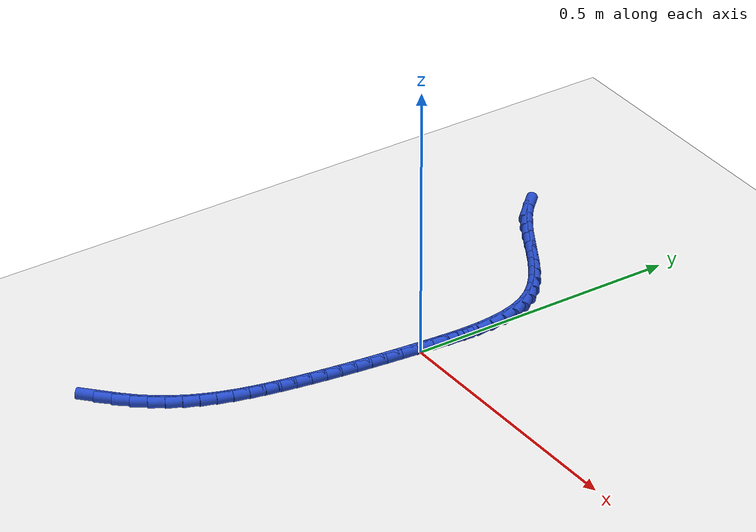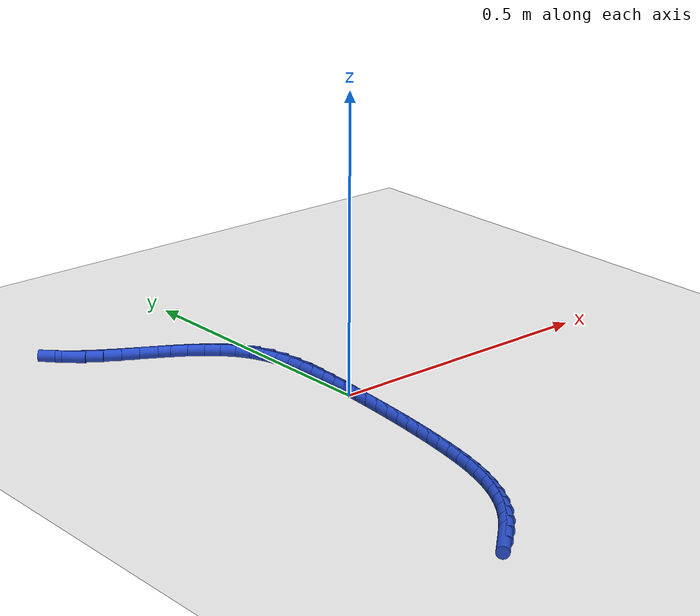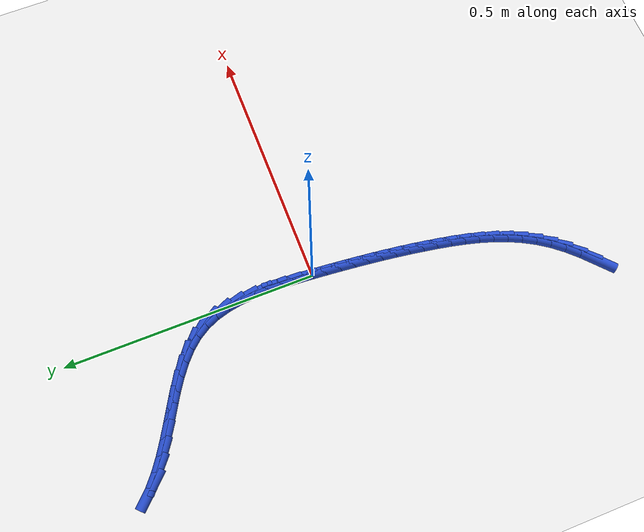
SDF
<sdf version="1.6">
 <world name="default">
  <model name="ground_plane">
   <static>1</static>
   <link name="link">
    <collision name="collision">
     <geometry><plane><normal>0 0 1</normal><size>100 100</size></plane></geometry>
     <surface><friction><ode><mu>100</mu><mu2>50</mu2></ode></friction></surface>
    </collision>
    <visual name="visual">
     <cast_shadows>0</cast_shadows>
     <geometry><plane><normal>0 0 1</normal><size>100 100</size></plane></geometry>
     <material>
      <script><uri>file://media/materials/scripts/gazebo.material</uri><name>Gazebo/WhiteGlow</name></script>
     </material>
    </visual>
   </link>
  </model>
  <model name="line">
   <link name="link_0">
    <pose>6.938893903907228e-18 1.3877787807814457e-17 0.01 0 1.57 1.4926502074860097</pose>
    <collision name="collision">
     <geometry><cylinder><radius>0.01</radius><length>0.08</length></cylinder></geometry>
    </collision>
    <visual name="visual">
     <material>
      <script><name>Gazebo/Blue</name><uri>file://media/materials/scripts/gazebo.material</uri></script>
     </material>
     <geometry><cylinder><radius>0.01</radius><length>0.08</length></cylinder></geometry>
    </visual>
   </link>
   <link name="link_1">
    <pose>0.0023202932928651165 0.02963126240863364 0.01 0 1.57 1.5112525195098752</pose>
    <collision name="collision">
     <geometry><cylinder><radius>0.01</radius><length>0.08</length></cylinder></geometry>
    </collision>
    <visual name="visual">
     <material>
      <script><name>Gazebo/Blue</name><uri>file://media/materials/scripts/gazebo.material</uri></script>
     </material>
     <geometry><cylinder><radius>0.01</radius><length>0.08</length></cylinder></geometry>
    </visual>
   </link>
   <link name="link_2">
    <pose>0.004103257225446785 0.059539599986659454 0.01 0 1.57 1.5436425515877783</pose>
    <collision name="collision">
     <geometry><cylinder><radius>0.01</radius><length>0.08</length></cylinder></geometry>
    </collision>
    <visual name="visual">
     <material>
      <script><name>Gazebo/Blue</name><uri>file://media/materials/scripts/gazebo.material</uri></script>
     </material>
     <geometry><cylinder><radius>0.01</radius><length>0.08</length></cylinder></geometry>
    </visual>
   </link>
   <link name="link_3">
    <pose>0.004913730629263788 0.08937980427007985 0.01 0 1.57 -1.5505054672399763</pose>
    <collision name="collision">
     <geometry><cylinder><radius>0.01</radius><length>0.08</length></cylinder></geometry>
    </collision>
    <visual name="visual">
     <material>
      <script><name>Gazebo/Blue</name><uri>file://media/materials/scripts/gazebo.material</uri></script>
     </material>
     <geometry><cylinder><radius>0.01</radius><length>0.08</length></cylinder></geometry>
    </visual>
   </link>
   <link name="link_4">
    <pose>0.004316552335834899 0.11880666679489729 0.01 0 1.57 -1.4858898653459824</pose>
    <collision name="collision">
     <geometry><cylinder><radius>0.01</radius><length>0.08</length></cylinder></geometry>
    </collision>
    <visual name="visual">
     <material>
      <script><name>Gazebo/Blue</name><uri>file://media/materials/scripts/gazebo.material</uri></script>
     </material>
     <geometry><cylinder><radius>0.01</radius><length>0.08</length></cylinder></geometry>
    </visual>
   </link>
   <link name="link_5">
    <pose>0.001876561176678896 0.1474749790971142 0.01 0 1.57 -1.4012783976738419</pose>
    <collision name="collision">
     <geometry><cylinder><radius>0.01</radius><length>0.08</length></cylinder></geometry>
    </collision>
    <visual name="visual">
     <material>
      <script><name>Gazebo/Blue</name><uri>file://media/materials/scripts/gazebo.material</uri></script>
     </material>
     <geometry><cylinder><radius>0.01</radius><length>0.08</length></cylinder></geometry>
    </visual>
   </link>
   <link name="link_6">
    <pose>-0.0028414040166854504 0.17503953271273295 0.01 0 1.57 -1.2935765922307763</pose>
    <collision name="collision">
     <geometry><cylinder><radius>0.01</radius><length>0.08</length></cylinder></geometry>
    </collision>
    <visual name="visual">
     <material>
      <script><name>Gazebo/Blue</name><uri>file://media/materials/scripts/gazebo.material</uri></script>
     </material>
     <geometry><cylinder><radius>0.01</radius><length>0.08</length></cylinder></geometry>
    </visual>
   </link>
   <link name="link_7">
    <pose>-0.010272504412739364 0.20115511917775597 0.01 0 1.57 -1.160500586632022</pose>
    <collision name="collision">
     <geometry><cylinder><radius>0.01</radius><length>0.08</length></cylinder></geometry>
    </collision>
    <visual name="visual">
     <material>
      <script><name>Gazebo/Blue</name><uri>file://media/materials/scripts/gazebo.material</uri></script>
     </material>
     <geometry><cylinder><radius>0.01</radius><length>0.08</length></cylinder></geometry>
    </visual>
   </link>
   <link name="link_8">
    <pose>-0.020851901179964064 0.22547653002818574 0.01 0 1.57 -1.0030397510339848</pose>
    <collision name="collision">
     <geometry><cylinder><radius>0.01</radius><length>0.08</length></cylinder></geometry>
    </collision>
    <visual name="visual">
     <material>
      <script><name>Gazebo/Blue</name><uri>file://media/materials/scripts/gazebo.material</uri></script>
     </material>
     <geometry><cylinder><radius>0.01</radius><length>0.08</length></cylinder></geometry>
    </visual>
   </link>
   <link name="link_9">
    <pose>-0.03500438931396423 0.24766579175591782 0.01 0 1.57 -0.8463104783337656</pose>
    <collision name="collision">
     <geometry><cylinder><radius>0.01</radius><length>0.08</length></cylinder></geometry>
    </collision>
    <visual name="visual">
     <material>
      <script><name>Gazebo/Blue</name><uri>file://media/materials/scripts/gazebo.material</uri></script>
     </material>
     <geometry><cylinder><radius>0.01</radius><length>0.08</length></cylinder></geometry>
    </visual>
   </link>
   <link name="link_10">
    <pose>-0.05272314583087124 0.2676861738555821 0.01 0 1.57 -0.721702423346588</pose>
    <collision name="collision">
     <geometry><cylinder><radius>0.01</radius><length>0.08</length></cylinder></geometry>
    </collision>
    <visual name="visual">
     <material>
      <script><name>Gazebo/Blue</name><uri>file://media/materials/scripts/gazebo.material</uri></script>
     </material>
     <geometry><cylinder><radius>0.01</radius><length>0.08</length></cylinder></geometry>
    </visual>
   </link>
   <link name="link_11">
    <pose>-0.07342350970037664 0.2859042415056813 0.01 0 1.57 -0.6299822140444941</pose>
    <collision name="collision">
     <geometry><cylinder><radius>0.01</radius><length>0.08</length></cylinder></geometry>
    </collision>
    <visual name="visual">
     <material>
      <script><name>Gazebo/Blue</name><uri>file://media/materials/scripts/gazebo.material</uri></script>
     </material>
     <geometry><cylinder><radius>0.01</radius><length>0.08</length></cylinder></geometry>
    </visual>
   </link>
   <link name="link_12">
    <pose>-0.09648042715843243 0.30271475154720484 0.01 0 1.57 -0.5673968668931678</pose>
    <collision name="collision">
     <geometry><cylinder><radius>0.01</radius><length>0.08</length></cylinder></geometry>
    </collision>
    <visual name="visual">
     <material>
      <script><name>Gazebo/Blue</name><uri>file://media/materials/scripts/gazebo.material</uri></script>
     </material>
     <geometry><cylinder><radius>0.01</radius><length>0.08</length></cylinder></geometry>
    </visual>
   </link>
   <link name="link_13">
    <pose>-0.12126884444099065 0.31851246082114204 0.01 0 1.57 -0.5302134122754102</pose>
    <collision name="collision">
     <geometry><cylinder><radius>0.01</radius><length>0.08</length></cylinder></geometry>
    </collision>
    <visual name="visual">
     <material>
      <script><name>Gazebo/Blue</name><uri>file://media/materials/scripts/gazebo.material</uri></script>
     </material>
     <geometry><cylinder><radius>0.01</radius><length>0.08</length></cylinder></geometry>
    </visual>
   </link>
   <link name="link_14">
    <pose>-0.14716370778400326 0.33369212616848204 0.01 0 1.57 -0.5158311585512316</pose>
    <collision name="collision">
     <geometry><cylinder><radius>0.01</radius><length>0.08</length></cylinder></geometry>
    </collision>
    <visual name="visual">
     <material>
      <script><name>Gazebo/Blue</name><uri>file://media/materials/scripts/gazebo.material</uri></script>
     </material>
     <geometry><cylinder><radius>0.01</radius><length>0.08</length></cylinder></geometry>
    </visual>
   </link>
   <link name="link_15">
    <pose>-0.17353996342342232 0.34864850443021417 0.01 0 1.57 -0.5230969465022173</pose>
    <collision name="collision">
     <geometry><cylinder><radius>0.01</radius><length>0.08</length></cylinder></geometry>
    </collision>
    <visual name="visual">
     <material>
      <script><name>Gazebo/Blue</name><uri>file://media/materials/scripts/gazebo.material</uri></script>
     </material>
     <geometry><cylinder><radius>0.01</radius><length>0.08</length></cylinder></geometry>
    </visual>
   </link>
   <link name="link_16">
    <pose>-0.1997725575951998 0.3637763524473276 0.01 0 1.57 -0.5523381844660998</pose>
    <collision name="collision">
     <geometry><cylinder><radius>0.01</radius><length>0.08</length></cylinder></geometry>
    </collision>
    <visual name="visual">
     <material>
      <script><name>Gazebo/Blue</name><uri>file://media/materials/scripts/gazebo.material</uri></script>
     </material>
     <geometry><cylinder><radius>0.01</radius><length>0.08</length></cylinder></geometry>
    </visual>
   </link>
   <link name="link_17">
    <pose>-0.22523643653528777 0.3794704270608117 0.01 0 1.57 -0.6052956724535428</pose>
    <collision name="collision">
     <geometry><cylinder><radius>0.01</radius><length>0.08</length></cylinder></geometry>
    </collision>
    <visual name="visual">
     <material>
      <script><name>Gazebo/Blue</name><uri>file://media/materials/scripts/gazebo.material</uri></script>
     </material>
     <geometry><cylinder><radius>0.01</radius><length>0.08</length></cylinder></geometry>
    </visual>
   </link>
   <link name="link_18">
    <pose>-0.24930654647963815 0.39612548511165563 0.01 0 1.57 -0.6848823754854073</pose>
    <collision name="collision">
     <geometry><cylinder><radius>0.01</radius><length>0.08</length></cylinder></geometry>
    </collision>
    <visual name="visual">
     <material>
      <script><name>Gazebo/Blue</name><uri>file://media/materials/scripts/gazebo.material</uri></script>
     </material>
     <geometry><cylinder><radius>0.01</radius><length>0.08</length></cylinder></geometry>
    </visual>
   </link>
   <link name="link_19">
    <pose>-0.2713578336642029 0.41413628344084863 0.01 0 1.57 -0.7944328034026182</pose>
    <collision name="collision">
     <geometry><cylinder><radius>0.01</radius><length>0.08</length></cylinder></geometry>
    </collision>
    <visual name="visual">
     <material>
      <script><name>Gazebo/Blue</name><uri>file://media/materials/scripts/gazebo.material</uri></script>
     </material>
     <geometry><cylinder><radius>0.01</radius><length>0.08</length></cylinder></geometry>
    </visual>
   </link>
   <link name="link_240">
    <pose>-0.1742656257620032 -0.5258924639352074 0.01 0 1.57 0.7380999890037518</pose>
    <collision name="collision">
     <geometry><cylinder><radius>0.01</radius><length>0.08</length></cylinder></geometry>
    </collision>
    <visual name="visual">
     <material>
      <script><name>Gazebo/Blue</name><uri>file://media/materials/scripts/gazebo.material</uri></script>
     </material>
     <geometry><cylinder><radius>0.01</radius><length>0.08</length></cylinder></geometry>
    </visual>
   </link>
   <link name="link_241">
    <pose>-0.15090323922967738 -0.5046417696171482 0.01 0 1.57 0.8019164358080776</pose>
    <collision name="collision">
     <geometry><cylinder><radius>0.01</radius><length>0.08</length></cylinder></geometry>
    </collision>
    <visual name="visual">
     <material>
      <script><name>Gazebo/Blue</name><uri>file://media/materials/scripts/gazebo.material</uri></script>
     </material>
     <geometry><cylinder><radius>0.01</radius><length>0.08</length></cylinder></geometry>
    </visual>
   </link>
   <link name="link_242">
    <pose>-0.1295294426264781 -0.48254993049457895 0.01 0 1.57 0.8816866393308905</pose>
    <collision name="collision">
     <geometry><cylinder><radius>0.01</radius><length>0.08</length></cylinder></geometry>
    </collision>
    <visual name="visual">
     <material>
      <script><name>Gazebo/Blue</name><uri>file://media/materials/scripts/gazebo.material</uri></script>
     </material>
     <geometry><cylinder><radius>0.01</radius><length>0.08</length></cylinder></geometry>
    </visual>
   </link>
   <link name="link_243">
    <pose>-0.11053631753135669 -0.4594955568115831 0.01 0 1.57 0.9721000746445524</pose>
    <collision name="collision">
     <geometry><cylinder><radius>0.01</radius><length>0.08</length></cylinder></geometry>
    </collision>
    <visual name="visual">
     <material>
      <script><name>Gazebo/Blue</name><uri>file://media/materials/scripts/gazebo.material</uri></script>
     </material>
     <geometry><cylinder><radius>0.01</radius><length>0.08</length></cylinder></geometry>
    </visual>
   </link>
   <link name="link_244">
    <pose>-0.09412149451333487 -0.43543482357678104 0.01 0 1.57 1.0580310600491816</pose>
    <collision name="collision">
     <geometry><cylinder><radius>0.01</radius><length>0.08</length></cylinder></geometry>
    </collision>
    <visual name="visual">
     <material>
      <script><name>Gazebo/Blue</name><uri>file://media/materials/scripts/gazebo.material</uri></script>
     </material>
     <geometry><cylinder><radius>0.01</radius><length>0.08</length></cylinder></geometry>
    </visual>
   </link>
   <link name="link_245">
    <pose>-0.08007558390818079 -0.41048626252075443 0.01 0 1.57 1.135915903918502</pose>
    <collision name="collision">
     <geometry><cylinder><radius>0.01</radius><length>0.08</length></cylinder></geometry>
    </collision>
    <visual name="visual">
     <material>
      <script><name>Gazebo/Blue</name><uri>file://media/materials/scripts/gazebo.material</uri></script>
     </material>
     <geometry><cylinder><radius>0.01</radius><length>0.08</length></cylinder></geometry>
    </visual>
   </link>
   <link name="link_246">
    <pose>-0.06813805471387073 -0.38478880519523173 0.01 0 1.57 1.2045685771601105</pose>
    <collision name="collision">
     <geometry><cylinder><radius>0.01</radius><length>0.08</length></cylinder></geometry>
    </collision>
    <visual name="visual">
     <material>
      <script><name>Gazebo/Blue</name><uri>file://media/materials/scripts/gazebo.material</uri></script>
     </material>
     <geometry><cylinder><radius>0.01</radius><length>0.08</length></cylinder></geometry>
    </visual>
   </link>
   <link name="link_247">
    <pose>-0.05804837592837976 -0.3584813831519397 0.01 0 1.57 1.2633560250117035</pose>
    <collision name="collision">
     <geometry><cylinder><radius>0.01</radius><length>0.08</length></cylinder></geometry>
    </collision>
    <visual name="visual">
     <material>
      <script><name>Gazebo/Blue</name><uri>file://media/materials/scripts/gazebo.material</uri></script>
     </material>
     <geometry><cylinder><radius>0.01</radius><length>0.08</length></cylinder></geometry>
    </visual>
   </link>
   <link name="link_248">
    <pose>-0.04954601654968339 -0.3317029279426056 0.01 0 1.57 1.3120513876704396</pose>
    <collision name="collision">
     <geometry><cylinder><radius>0.01</radius><length>0.08</length></cylinder></geometry>
    </collision>
    <visual name="visual">
     <material>
      <script><name>Gazebo/Blue</name><uri>file://media/materials/scripts/gazebo.material</uri></script>
     </material>
     <geometry><cylinder><radius>0.01</radius><length>0.08</length></cylinder></geometry>
    </visual>
   </link>
   <link name="link_249">
    <pose>-0.042370445575757115 -0.30459237111895676 0.01 0 1.57 1.3506683193346112</pose>
    <collision name="collision">
     <geometry><cylinder><radius>0.01</radius><length>0.08</length></cylinder></geometry>
    </collision>
    <visual name="visual">
     <material>
      <script><name>Gazebo/Blue</name><uri>file://media/materials/scripts/gazebo.material</uri></script>
     </material>
     <geometry><cylinder><radius>0.01</radius><length>0.08</length></cylinder></geometry>
    </visual>
   </link>
   <link name="link_250">
    <pose>-0.03626113200457644 -0.2772886442327204 0.01 0 1.57 1.3793125100316574</pose>
    <collision name="collision">
     <geometry><cylinder><radius>0.01</radius><length>0.08</length></cylinder></geometry>
    </collision>
    <visual name="visual">
     <material>
      <script><name>Gazebo/Blue</name><uri>file://media/materials/scripts/gazebo.material</uri></script>
     </material>
     <geometry><cylinder><radius>0.01</radius><length>0.08</length></cylinder></geometry>
    </visual>
   </link>
   <link name="link_251">
    <pose>-0.030957544834116855 -0.24993067883562406 0.01 0 1.57 1.3984171594909376</pose>
    <collision name="collision">
     <geometry><cylinder><radius>0.01</radius><length>0.08</length></cylinder></geometry>
    </collision>
    <visual name="visual">
     <material>
      <script><name>Gazebo/Blue</name><uri>file://media/materials/scripts/gazebo.material</uri></script>
     </material>
     <geometry><cylinder><radius>0.01</radius><length>0.08</length></cylinder></geometry>
    </visual>
   </link>
   <link name="link_252">
    <pose>-0.026207566769882857 -0.22264874674795354 0.01 0 1.57 1.4129942618288822</pose>
    <collision name="collision">
     <geometry><cylinder><radius>0.01</radius><length>0.08</length></cylinder></geometry>
    </collision>
    <visual name="visual">
     <material>
      <script><name>Gazebo/Blue</name><uri>file://media/materials/scripts/gazebo.material</uri></script>
     </material>
     <geometry><cylinder><radius>0.01</radius><length>0.08</length></cylinder></geometry>
    </visual>
   </link>
   <link name="link_253">
    <pose>-0.021879442767513045 -0.1954492380460567 0.01 0 1.57 1.4266684306133826</pose>
    <collision name="collision">
     <geometry><cylinder><radius>0.01</radius><length>0.08</length></cylinder></geometry>
    </collision>
    <visual name="visual">
     <material>
      <script><name>Gazebo/Blue</name><uri>file://media/materials/scripts/gazebo.material</uri></script>
     </material>
     <geometry><cylinder><radius>0.01</radius><length>0.08</length></cylinder></geometry>
    </visual>
   </link>
   <link name="link_254">
    <pose>-0.01793132275087613 -0.16824600894087685 0.01 0 1.57 1.4393813205305752</pose>
    <collision name="collision">
     <geometry><cylinder><radius>0.01</radius><length>0.08</length></cylinder></geometry>
    </collision>
    <visual name="visual">
     <material>
      <script><name>Gazebo/Blue</name><uri>file://media/materials/scripts/gazebo.material</uri></script>
     </material>
     <geometry><cylinder><radius>0.01</radius><length>0.08</length></cylinder></geometry>
    </visual>
   </link>
   <link name="link_255">
    <pose>-0.014323515892267727 -0.1409506932566844 0.01 0 1.57 1.4510053138489802</pose>
    <collision name="collision">
     <geometry><cylinder><radius>0.01</radius><length>0.08</length></cylinder></geometry>
    </collision>
    <visual name="visual">
     <material>
      <script><name>Gazebo/Blue</name><uri>file://media/materials/scripts/gazebo.material</uri></script>
     </material>
     <geometry><cylinder><radius>0.01</radius><length>0.08</length></cylinder></geometry>
    </visual>
   </link>
   <link name="link_256">
    <pose>-0.011016331363983453 -0.11347492481774987 0.01 0 1.57 1.461438069617311</pose>
    <collision name="collision">
     <geometry><cylinder><radius>0.01</radius><length>0.08</length></cylinder></geometry>
    </collision>
    <visual name="visual">
     <material>
      <script><name>Gazebo/Blue</name><uri>file://media/materials/scripts/gazebo.material</uri></script>
     </material>
     <geometry><cylinder><radius>0.01</radius><length>0.08</length></cylinder></geometry>
    </visual>
   </link>
   <link name="link_257">
    <pose>-0.007970078338318929 -0.0857303374483437 0.01 0 1.57 1.4706050221482194</pose>
    <collision name="collision">
     <geometry><cylinder><radius>0.01</radius><length>0.08</length></cylinder></geometry>
    </collision>
    <visual name="visual">
     <material>
      <script><name>Gazebo/Blue</name><uri>file://media/materials/scripts/gazebo.material</uri></script>
     </material>
     <geometry><cylinder><radius>0.01</radius><length>0.08</length></cylinder></geometry>
    </visual>
   </link>
   <link name="link_258">
    <pose>-0.005145065987569765 -0.057628564972736385 0.01 0 1.57 1.4784603310235613</pose>
    <collision name="collision">
     <geometry><cylinder><radius>0.01</radius><length>0.08</length></cylinder></geometry>
    </collision>
    <visual name="visual">
     <material>
      <script><name>Gazebo/Blue</name><uri>file://media/materials/scripts/gazebo.material</uri></script>
     </material>
     <geometry><cylinder><radius>0.01</radius><length>0.08</length></cylinder></geometry>
    </visual>
   </link>
   <link name="link_259">
    <pose>-0.002501603484031583 -0.02908124121519831 0.01 0 1.57 1.4849863578174118</pose>
    <collision name="collision">
     <geometry><cylinder><radius>0.01</radius><length>0.08</length></cylinder></geometry>
    </collision>
    <visual name="visual">
     <material>
      <script><name>Gazebo/Blue</name><uri>file://media/materials/scripts/gazebo.material</uri></script>
     </material>
     <geometry><cylinder><radius>0.01</radius><length>0.08</length></cylinder></geometry>
    </visual>
   </link>
   <link name="link_260">
    <pose>1.734723475976807e-18 -4.163336342344337e-17 0.01 0 1.57 1.4901918661464089</pose>
    <collision name="collision">
     <geometry><cylinder><radius>0.01</radius><length>0.08</length></cylinder></geometry>
    </collision>
    <visual name="visual">
     <material>
      <script><name>Gazebo/Blue</name><uri>file://media/materials/scripts/gazebo.material</uri></script>
     </material>
     <geometry><cylinder><radius>0.01</radius><length>0.08</length></cylinder></geometry>
    </visual>
   </link>
   <link name="link_261">
    <pose>0.0023994352922293697 0.029703524848587987 0.01 0 1.57 1.4941092225304426</pose>
    <collision name="collision">
     <geometry><cylinder><radius>0.01</radius><length>0.08</length></cylinder></geometry>
    </collision>
    <visual name="visual">
     <material>
      <script><name>Gazebo/Blue</name><uri>file://media/materials/scripts/gazebo.material</uri></script>
     </material>
     <geometry><cylinder><radius>0.01</radius><length>0.08</length></cylinder></geometry>
    </visual>
   </link>
   <link name="link_262">
    <pose>0.0047363932203609085 0.06011769950629532 0.01 0 1.57 1.4921733955525704</pose>
    <collision name="collision">
     <geometry><cylinder><radius>0.01</radius><length>0.08</length></cylinder></geometry>
    </collision>
    <visual name="visual">
     <material>
      <script><name>Gazebo/Blue</name><uri>file://media/materials/scripts/gazebo.material</uri></script>
     </material>
     <geometry><cylinder><radius>0.01</radius><length>0.08</length></cylinder></geometry>
    </visual>
   </link>
  </model>
 </world>
</sdf>
